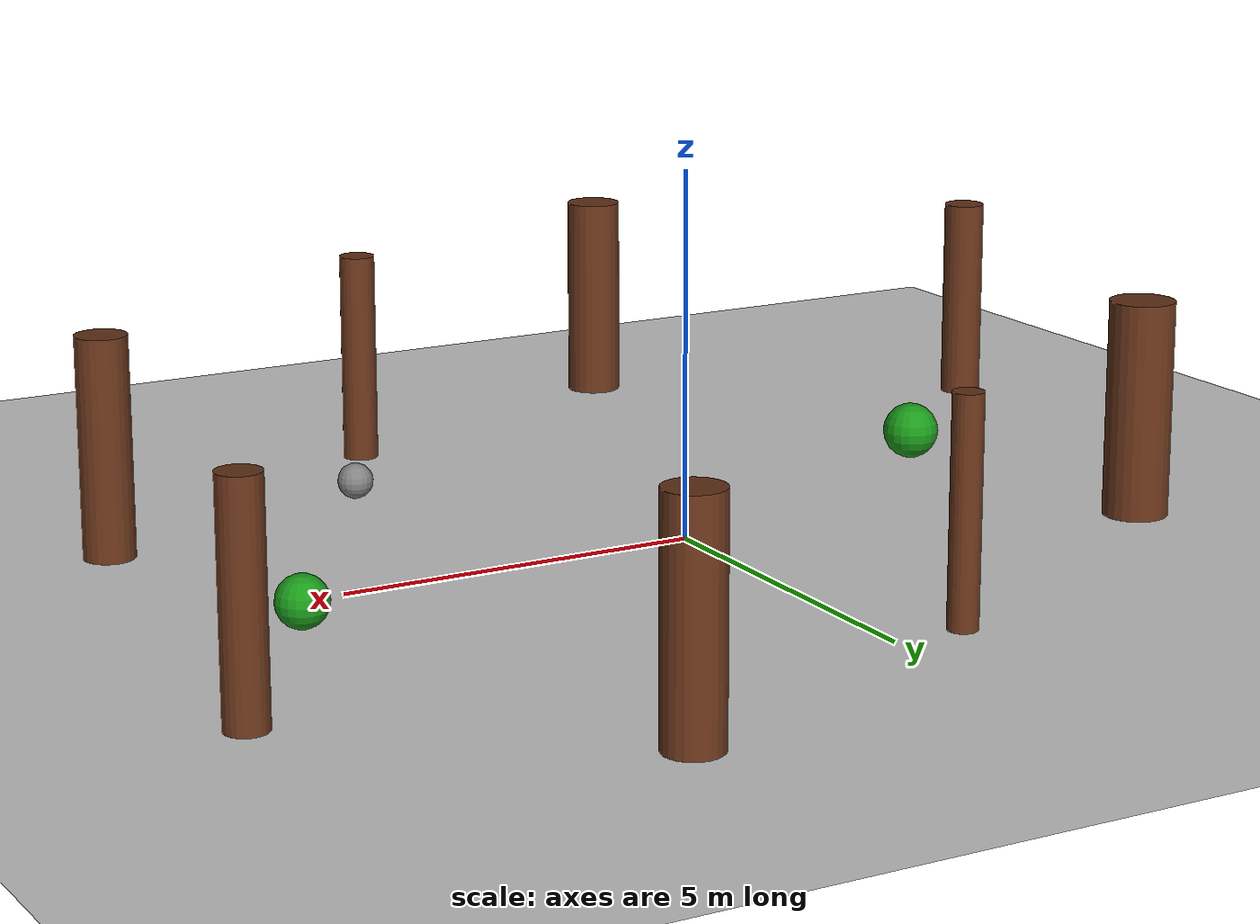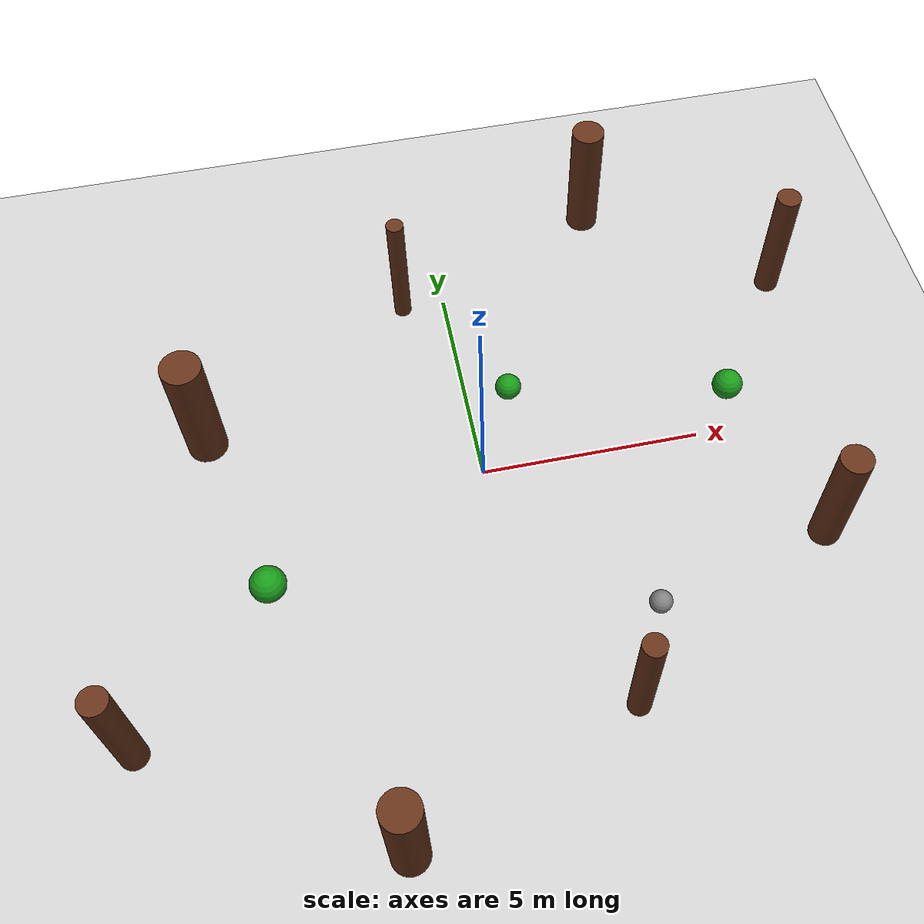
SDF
<?xml version="1.0" ?>
<sdf version="1.6">
  <world name="dense_forest">
    <include>
      <uri>model://sun</uri>
    </include>
    <include>
      <uri>model://ground_plane</uri>
    </include>

    <!-- Tree trunks (cylinders) scattered around -->
    <model name="tree1">
      <static>true</static>
      <pose>-8 -5 1.5 0 0 0</pose>
      <link name="link">
        <collision name="collision">
          <geometry>
            <cylinder>
              <radius>0.3</radius>
              <length>3</length>
            </cylinder>
          </geometry>
        </collision>
        <visual name="visual">
          <geometry>
            <cylinder>
              <radius>0.3</radius>
              <length>3</length>
            </cylinder>
          </geometry>
          <material>
            <ambient>0.4 0.2 0.1 1</ambient>
          </material>
        </visual>
      </link>
    </model>

    <model name="tree2">
      <static>true</static>
      <pose>-3 -8 1.5 0 0 0</pose>
      <link name="link">
        <collision name="collision">
          <geometry>
            <cylinder>
              <radius>0.4</radius>
              <length>3</length>
            </cylinder>
          </geometry>
        </collision>
        <visual name="visual">
          <geometry>
            <cylinder>
              <radius>0.4</radius>
              <length>3</length>
            </cylinder>
          </geometry>
          <material>
            <ambient>0.4 0.2 0.1 1</ambient>
          </material>
        </visual>
      </link>
    </model>

    <model name="tree3">
      <static>true</static>
      <pose>2 -6 1.5 0 0 0</pose>
      <link name="link">
        <collision name="collision">
          <geometry>
            <cylinder>
              <radius>0.25</radius>
              <length>3</length>
            </cylinder>
          </geometry>
        </collision>
        <visual name="visual">
          <geometry>
            <cylinder>
              <radius>0.25</radius>
              <length>3</length>
            </cylinder>
          </geometry>
          <material>
            <ambient>0.4 0.2 0.1 1</ambient>
          </material>
        </visual>
      </link>
    </model>

    <model name="tree4">
      <static>true</static>
      <pose>7 -3 1.5 0 0 0</pose>
      <link name="link">
        <collision name="collision">
          <geometry>
            <cylinder>
              <radius>0.35</radius>
              <length>3</length>
            </cylinder>
          </geometry>
        </collision>
        <visual name="visual">
          <geometry>
            <cylinder>
              <radius>0.35</radius>
              <length>3</length>
            </cylinder>
          </geometry>
          <material>
            <ambient>0.4 0.2 0.1 1</ambient>
          </material>
        </visual>
      </link>
    </model>

    <model name="tree5">
      <static>true</static>
      <pose>-6 2 1.5 0 0 0</pose>
      <link name="link">
        <collision name="collision">
          <geometry>
            <cylinder>
              <radius>0.45</radius>
              <length>3</length>
            </cylinder>
          </geometry>
        </collision>
        <visual name="visual">
          <geometry>
            <cylinder>
              <radius>0.45</radius>
              <length>3</length>
            </cylinder>
          </geometry>
          <material>
            <ambient>0.4 0.2 0.1 1</ambient>
          </material>
        </visual>
      </link>
    </model>

    <model name="tree6">
      <static>true</static>
      <pose>-1 5 1.5 0 0 0</pose>
      <link name="link">
        <collision name="collision">
          <geometry>
            <cylinder>
              <radius>0.2</radius>
              <length>3</length>
            </cylinder>
          </geometry>
        </collision>
        <visual name="visual">
          <geometry>
            <cylinder>
              <radius>0.2</radius>
              <length>3</length>
            </cylinder>
          </geometry>
          <material>
            <ambient>0.4 0.2 0.1 1</ambient>
          </material>
        </visual>
      </link>
    </model>

    <model name="tree7">
      <static>true</static>
      <pose>4 7 1.5 0 0 0</pose>
      <link name="link">
        <collision name="collision">
          <geometry>
            <cylinder>
              <radius>0.38</radius>
              <length>3</length>
            </cylinder>
          </geometry>
        </collision>
        <visual name="visual">
          <geometry>
            <cylinder>
              <radius>0.38</radius>
              <length>3</length>
            </cylinder>
          </geometry>
          <material>
            <ambient>0.4 0.2 0.1 1</ambient>
          </material>
        </visual>
      </link>
    </model>

    <model name="tree8">
      <static>true</static>
      <pose>8 4 1.5 0 0 0</pose>
      <link name="link">
        <collision name="collision">
          <geometry>
            <cylinder>
              <radius>0.28</radius>
              <length>3</length>
            </cylinder>
          </geometry>
        </collision>
        <visual name="visual">
          <geometry>
            <cylinder>
              <radius>0.28</radius>
              <length>3</length>
            </cylinder>
          </geometry>
          <material>
            <ambient>0.4 0.2 0.1 1</ambient>
          </material>
        </visual>
      </link>
    </model>

    <!-- Bushes (small green spheres) -->
    <model name="bush1">
      <static>true</static>
      <pose>-5 -2 0.4 0 0 0</pose>
      <link name="link">
        <collision name="collision">
          <geometry>
            <sphere>
              <radius>0.4</radius>
            </sphere>
          </geometry>
        </collision>
        <visual name="visual">
          <geometry>
            <sphere>
              <radius>0.4</radius>
            </sphere>
          </geometry>
          <material>
            <ambient>0.1 0.6 0.1 1</ambient>
          </material>
        </visual>
      </link>
    </model>

    <model name="bush2">
      <static>true</static>
      <pose>1 2 0.3 0 0 0</pose>
      <link name="link">
        <collision name="collision">
          <geometry>
            <sphere>
              <radius>0.3</radius>
            </sphere>
          </geometry>
        </collision>
        <visual name="visual">
          <geometry>
            <sphere>
              <radius>0.3</radius>
            </sphere>
          </geometry>
          <material>
            <ambient>0.1 0.6 0.1 1</ambient>
          </material>
        </visual>
      </link>
    </model>

    <model name="bush3">
      <static>true</static>
      <pose>6 1 0.35 0 0 0</pose>
      <link name="link">
        <collision name="collision">
          <geometry>
            <sphere>
              <radius>0.35</radius>
            </sphere>
          </geometry>
        </collision>
        <visual name="visual">
          <geometry>
            <sphere>
              <radius>0.35</radius>
            </sphere>
          </geometry>
          <material>
            <ambient>0.1 0.6 0.1 1</ambient>
          </material>
        </visual>
      </link>
    </model>

    <!-- Rocks -->
    <model name="rock1">
      <static>true</static>
      <pose>3 -4 0.25 0 0 0</pose>
      <link name="link">
        <collision name="collision">
          <geometry>
            <sphere>
              <radius>0.25</radius>
            </sphere>
          </geometry>
        </collision>
        <visual name="visual">
          <geometry>
            <sphere>
              <radius>0.25</radius>
            </sphere>
          </geometry>
          <material>
            <ambient>0.5 0.5 0.5 1</ambient>
          </material>
        </visual>
      </link>
    </model>

  </world>
</sdf>
